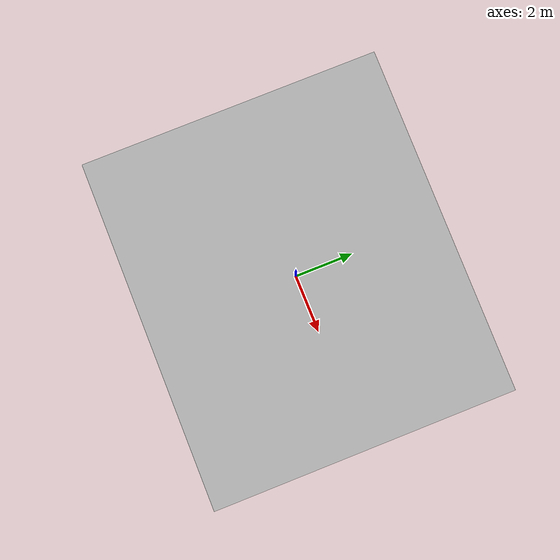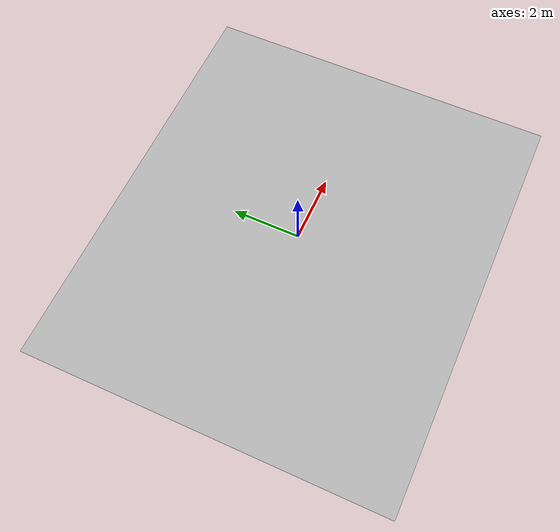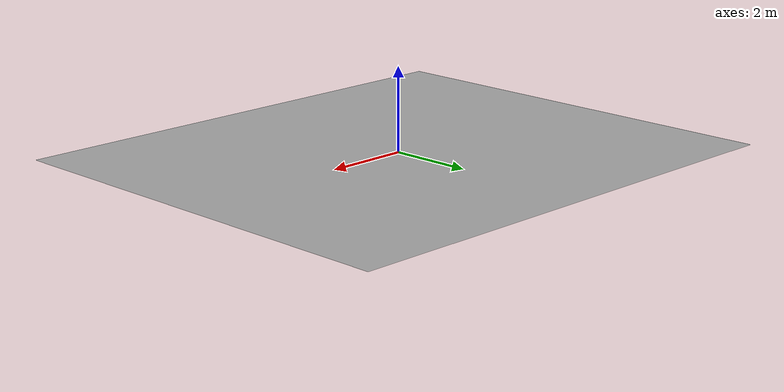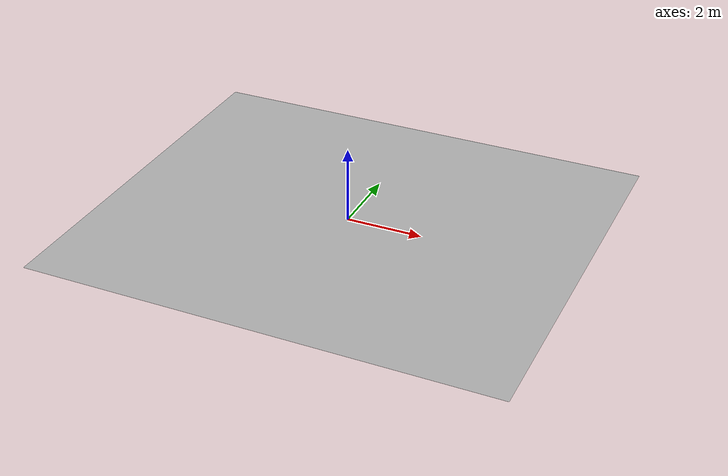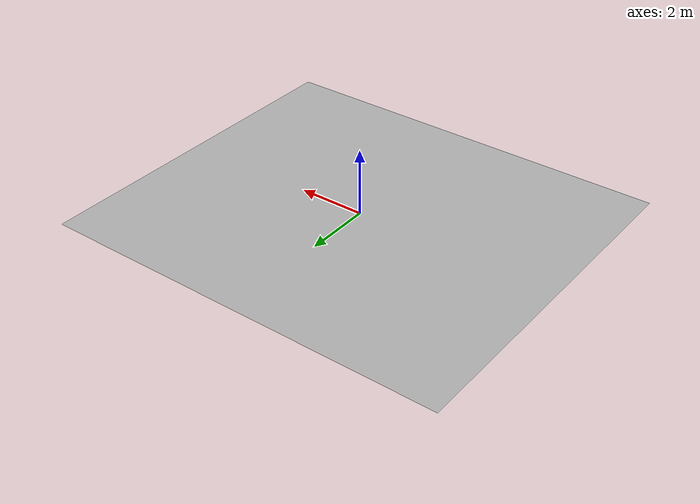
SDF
<?xml version="1.0" ?>
<sdf version="1.5">
  <model name="Straße">
    <static>true</static>
    <link name="link">
    	<colission name="colission">
        <geometry>
          <mesh>
            <uri>model://strasse/meshes/strasse.dae</uri>
          </mesh>
        </geometry>
      </colission>
      <visual name="visual">
        <geometry>
          <mesh>
            <uri>model://strasse/meshes/strasse.dae</uri>
          </mesh>
        </geometry>
      </visual>
    </link>
  </model>
</sdf>
